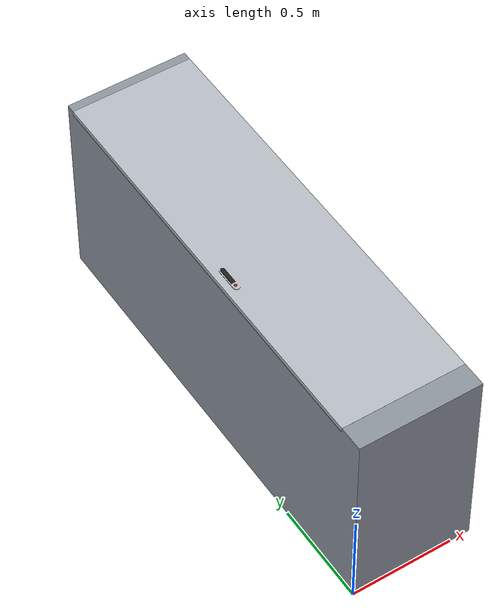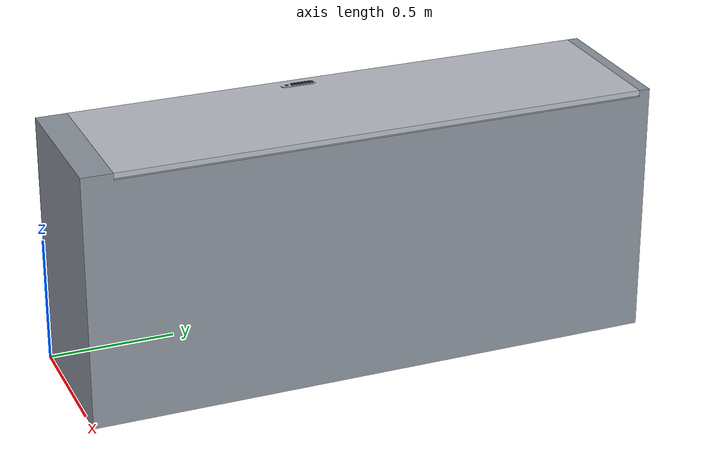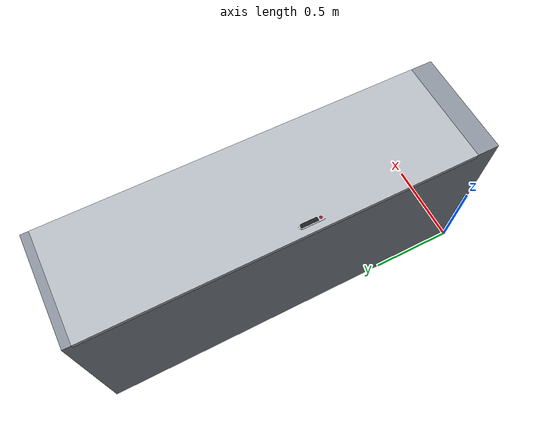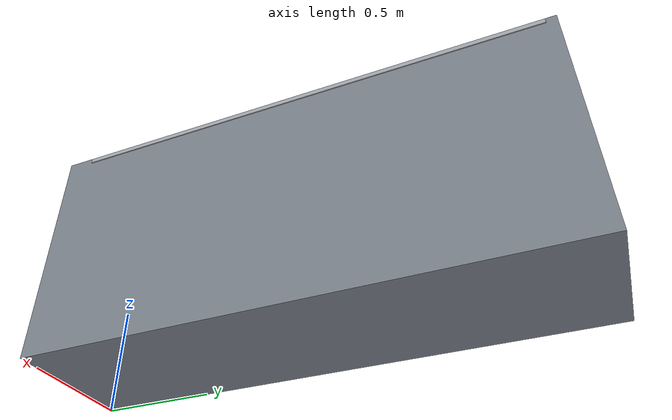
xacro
<?xml version="1.0"?>
<!-- Standalone cabinet entity spawned separately from the mobile robot. -->
<robot name="omr_cabinet" xmlns:xacro="http://www.ros.org/wiki/xacro">
  <xacro:include filename="environment.model.xacro"/>

  <xacro:environment_model/>

  <!-- Keep the cabinet fixed in the Gazebo world. -->
  <gazebo>
    <static>true</static>
  </gazebo>
</robot>

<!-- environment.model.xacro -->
<robot xmlns:xacro="http://www.ros.org/wiki/xacro">

  <xacro:macro name="environment_model" params="prefix:='env_' mesh_scale:=0.001">
    <xacro:property name="mesh_root"
                    value="package://omr_bringup/urdf/environment/meshes"/>

    <!-- Absolute centres in the env_base_link frame, in metres. This static
         model keeps the STL source axes: X=left/right, Y=up, Z=front/back. -->
    <xacro:property name="door_hinge_xyz" value="${[0.60000, 0.12200, 0.98425]}"/>
    <xacro:property name="door_mesh_xyz" value="${[0.00000, 0.12200, 0.98425]}"/>
    <xacro:property name="handle_xyz" value="${[0.05150, 1.03865, 1.00175]}"/>
    <xacro:property name="button_xyz" value="${[0.05150, 0.97650, 1.00675]}"/>
    <xacro:property name="pivot_xyz" value="${[0.05150, 1.07250, 0.97975]}"/>

    <material name="${prefix}cabinet_gray">
      <color rgba="0.55 0.58 0.62 1.0"/>
    </material>
    <material name="${prefix}door_gray">
      <color rgba="0.72 0.74 0.77 1.0"/>
    </material>
    <material name="${prefix}detail_dark">
      <color rgba="0.12 0.12 0.12 1.0"/>
    </material>
    <material name="${prefix}button_red">
      <color rgba="0.8 0.05 0.05 1.0"/>
    </material>

    <link name="${prefix}base_link">
      <inertial>
        <origin xyz="0.300 1.125 0.5025" rpy="0 0 0"/>
        <mass value="100.0"/>
        <inertia ixx="50.604375" ixy="0.0" ixz="0.0"
                 iyy="11.416875" iyz="0.0" izz="45.187500"/>
      </inertial>

      <!-- Cabinet shell: the model datum and root geometry. -->
      <visual name="cabinet_shell_visual">
        <geometry>
          <mesh filename="${mesh_root}/cabinet_shell.STL"
                scale="${mesh_scale} ${mesh_scale} ${mesh_scale}"/>
        </geometry>
        <material name="${prefix}cabinet_gray"/>
      </visual>
      <collision name="cabinet_shell_collision">
        <geometry>
          <mesh filename="${mesh_root}/cabinet_shell.STL"
                scale="${mesh_scale} ${mesh_scale} ${mesh_scale}"/>
        </geometry>
      </collision>

      <!-- Closed door positioned over the cabinet's front opening. -->
      <visual name="cabinet_door_visual">
        <origin xyz="${door_mesh_xyz[0]} ${door_mesh_xyz[1]} ${door_mesh_xyz[2]}"
                rpy="0 0 0"/>
        <geometry>
          <mesh filename="${mesh_root}/cabinet_door_1.STL"
                scale="${mesh_scale} ${mesh_scale} ${mesh_scale}"/>
        </geometry>
        <material name="${prefix}door_gray"/>
      </visual>
      <collision name="cabinet_door_collision">
        <origin xyz="${door_mesh_xyz[0]} ${door_mesh_xyz[1]} ${door_mesh_xyz[2]}"
                rpy="0 0 0"/>
        <geometry>
          <mesh filename="${mesh_root}/cabinet_door_1.STL"
                scale="${mesh_scale} ${mesh_scale} ${mesh_scale}"/>
        </geometry>
      </collision>

      <!-- Pivot centre is supplied in cabinet coordinates. Its STL bounding
           box centre is (10, 10, 22.5) mm. -->
      <visual name="pivot_shaft_visual">
        <origin xyz="${pivot_xyz[0] - 0.01000}
                     ${pivot_xyz[1] - 0.01000}
                     ${pivot_xyz[2] - 0.02250}"
                rpy="0 0 0"/>
        <geometry>
          <mesh filename="${mesh_root}/pivot_shaft.STL"
                scale="${mesh_scale} ${mesh_scale} ${mesh_scale}"/>
        </geometry>
        <material name="${prefix}detail_dark"/>
      </visual>

      <!-- handle_xyz is already an absolute centre. The STL bounding-box
           centre is (10.5, 46.25, 9.5) mm. -->
      <visual name="handle_visual">
        <origin xyz="${handle_xyz[0] - 0.01050}
                     ${handle_xyz[1] - 0.04625}
                     ${handle_xyz[2] - 0.00950}"
                rpy="0 0 0"/>
        <geometry>
          <mesh filename="${mesh_root}/handle.STL"
                scale="${mesh_scale} ${mesh_scale} ${mesh_scale}"/>
        </geometry>
        <material name="${prefix}detail_dark"/>
      </visual>

      <!-- This single-link reference model is static, so its button is fixed.
           button_xyz is the absolute centre; the articulated SDF attaches the
           corresponding button to the moving door. -->
      <visual name="button_visual">
        <origin xyz="${button_xyz[0] - 0.00675}
                     ${button_xyz[1] - 0.00675}
                     ${button_xyz[2] - 0.00150}"
                rpy="0 0 0"/>
        <geometry>
          <mesh filename="${mesh_root}/button.STL"
                scale="${mesh_scale} ${mesh_scale} ${mesh_scale}"/>
        </geometry>
        <material name="${prefix}button_red"/>
      </visual>
    </link>
  </xacro:macro>

</robot>
